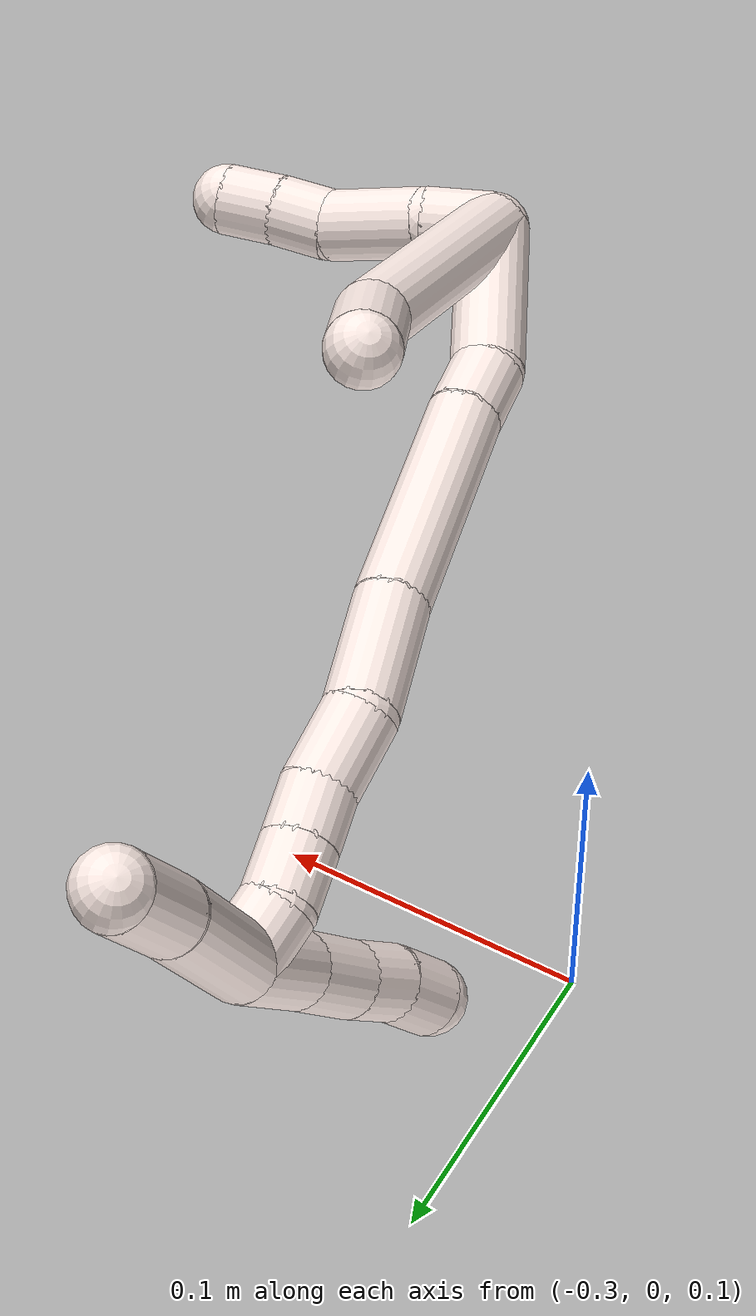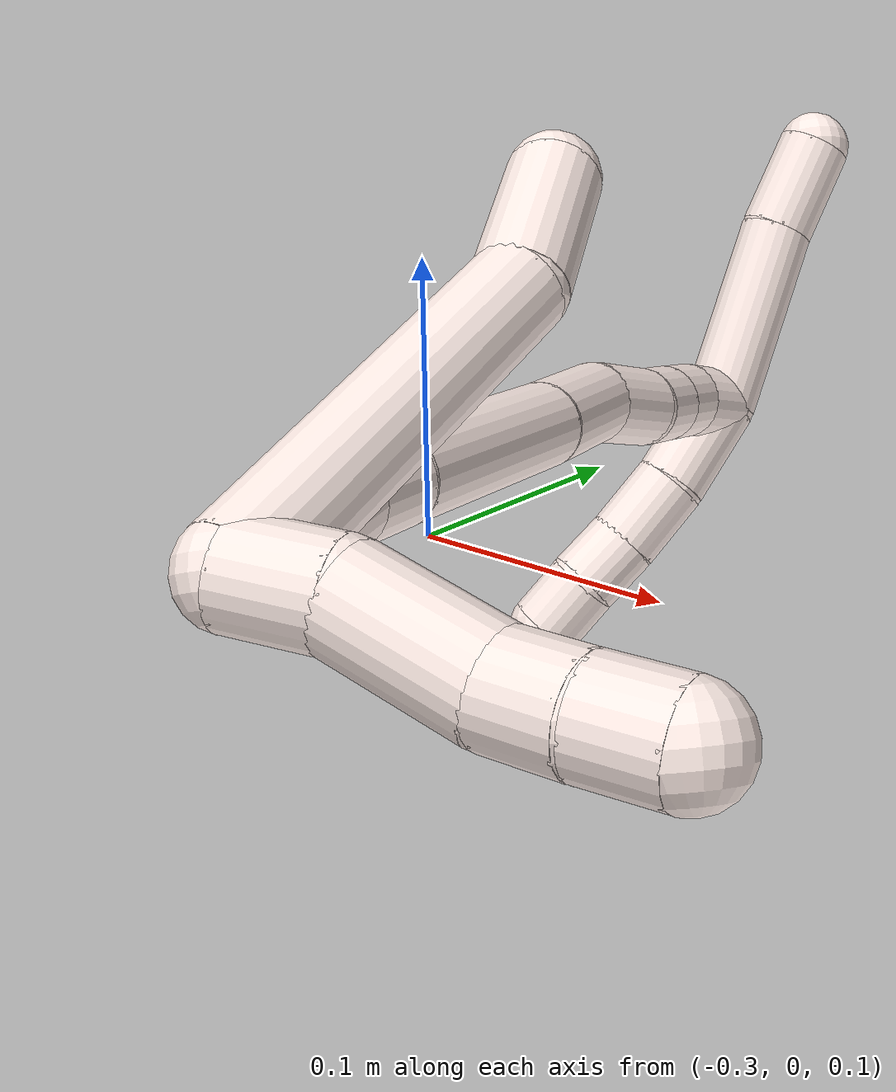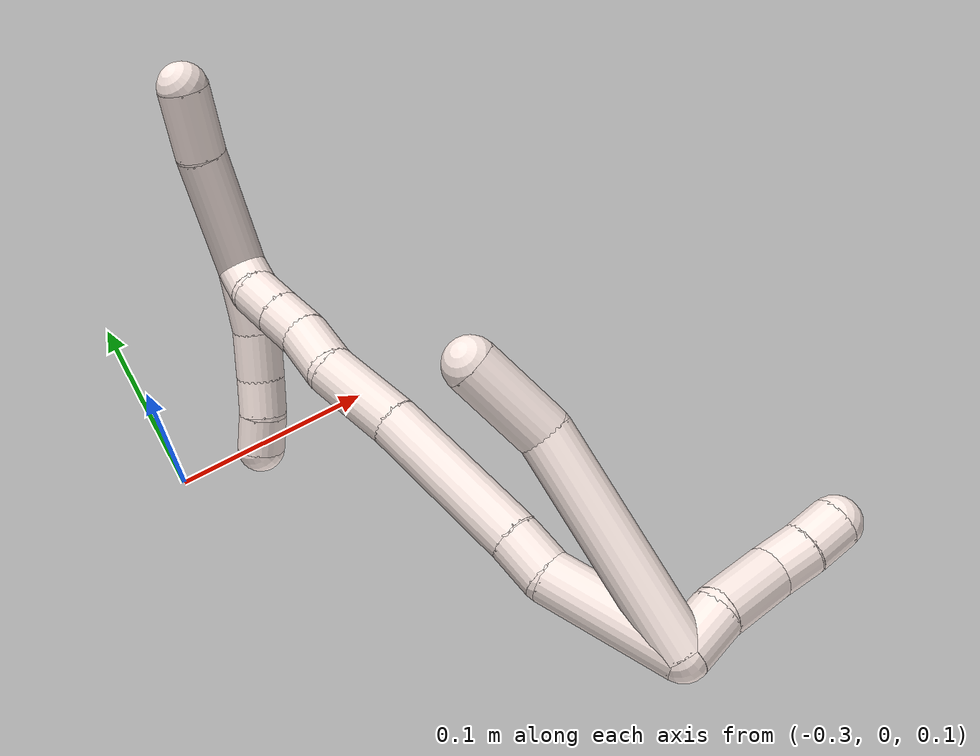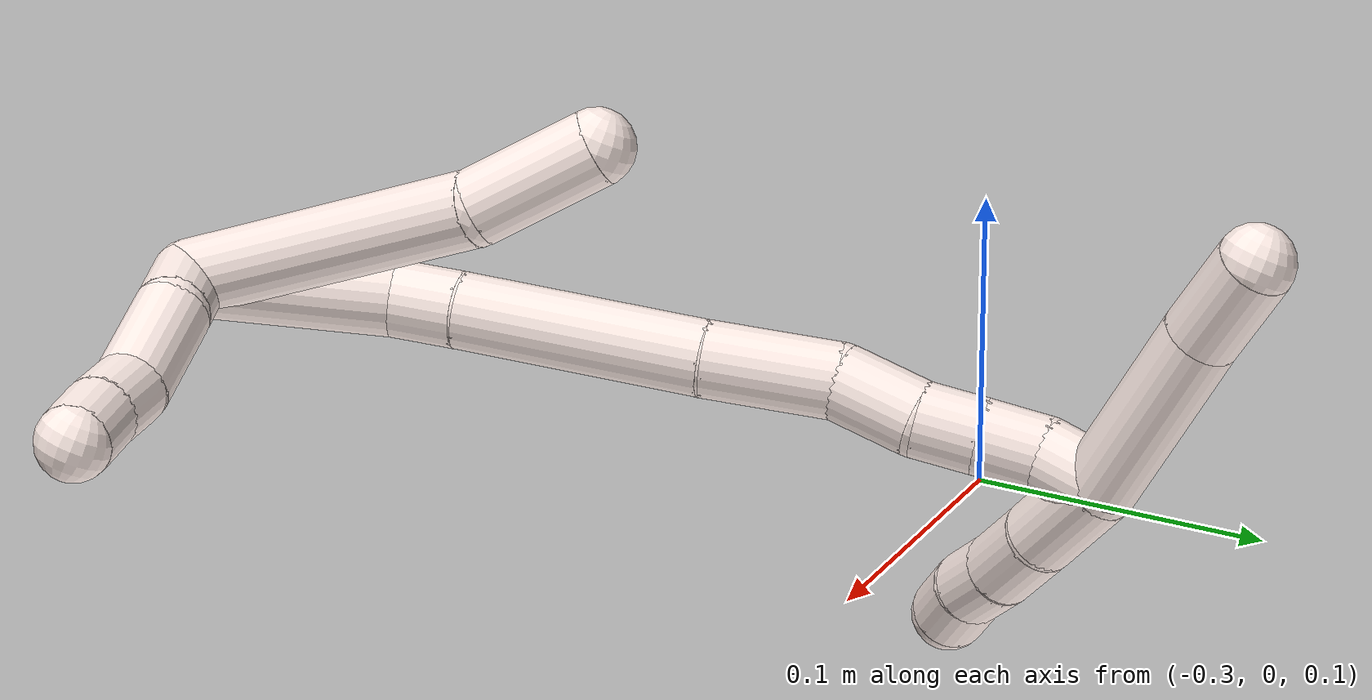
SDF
<sdf version="1.7">
 <world name="default">
  <model name="11">
   <static>0</static>
   <link name="11">
    <collision name="collision-cylinder-e_1_2_8">
     <pose>0.010398 0.041291 0.032533 -0.90347 0.195289 -0.094984</pose>
     <geometry><cylinder><radius>0.0125</radius><length>0.107172</length></cylinder></geometry>
     <surface>
      <friction><ode><mu>1.16</mu><mu2>1.16</mu2><slip1>0</slip1><slip2>0</slip2></ode></friction>
      <contact><ode><kp>1e+06</kp><kd>1</kd><max_vel>0</max_vel><min_depth>0.001</min_depth></ode></contact>
     </surface>
    </collision>
    <visual name="visual-cylinder-e_1_2_8">
     <pose>0.010398 0.041291 0.032533 -0.90347 0.195289 -0.094984</pose>
     <geometry><cylinder><radius>0.0125</radius><length>0.107172</length></cylinder></geometry>
     <material><ambient>1 0.933333 0.909804 1</ambient></material>
    </visual>
    <collision name="collision-cylinder-e_2_8_6">
     <pose>0.019136 0.096145 0.081554 -0.688406 -0.077639 0.027844</pose>
     <geometry><cylinder><radius>0.0125</radius><length>0.042828</length></cylinder></geometry>
     <surface>
      <friction><ode><mu>1.16</mu><mu2>1.16</mu2><slip1>0</slip1><slip2>0</slip2></ode></friction>
      <contact><ode><kp>1e+06</kp><kd>1</kd><max_vel>0</max_vel><min_depth>0.001</min_depth></ode></contact>
     </surface>
    </collision>
    <visual name="visual-cylinder-e_2_8_6">
     <pose>0.019136 0.096145 0.081554 -0.688406 -0.077639 0.027844</pose>
     <geometry><cylinder><radius>0.0125</radius><length>0.042828</length></cylinder></geometry>
     <material><ambient>1 0.933333 0.909804 1</ambient></material>
    </visual>
    <collision name="collision-cylinder-e_1_2_9">
     <pose>0.011056 0.002752 -0.003508 -2.47642 1.18746 -2.19558</pose>
     <geometry><cylinder><radius>0.0125</radius><length>0.023842</length></cylinder></geometry>
     <surface>
      <friction><ode><mu>1.16</mu><mu2>1.16</mu2><slip1>0</slip1><slip2>0</slip2></ode></friction>
      <contact><ode><kp>1e+06</kp><kd>1</kd><max_vel>0</max_vel><min_depth>0.001</min_depth></ode></contact>
     </surface>
    </collision>
    <visual name="visual-cylinder-e_1_2_9">
     <pose>0.011056 0.002752 -0.003508 -2.47642 1.18746 -2.19558</pose>
     <geometry><cylinder><radius>0.0125</radius><length>0.023842</length></cylinder></geometry>
     <material><ambient>1 0.933333 0.909804 1</ambient></material>
    </visual>
    <collision name="collision-cylinder-e_2_9_10">
     <pose>0.036899 0.008412 -0.016983 -2.85772 0.958643 -2.60498</pose>
     <geometry><cylinder><radius>0.0125</radius><length>0.036137</length></cylinder></geometry>
     <surface>
      <friction><ode><mu>1.16</mu><mu2>1.16</mu2><slip1>0</slip1><slip2>0</slip2></ode></friction>
      <contact><ode><kp>1e+06</kp><kd>1</kd><max_vel>0</max_vel><min_depth>0.001</min_depth></ode></contact>
     </surface>
    </collision>
    <visual name="visual-cylinder-e_2_9_10">
     <pose>0.036899 0.008412 -0.016983 -2.85772 0.958643 -2.60498</pose>
     <geometry><cylinder><radius>0.0125</radius><length>0.036137</length></cylinder></geometry>
     <material><ambient>1 0.933333 0.909804 1</ambient></material>
    </visual>
    <collision name="collision-cylinder-e_3_10_11">
     <pose>0.061162 0.011261 -0.030167 3.12332 1.24354 3.11609</pose>
     <geometry><cylinder><radius>0.0125</radius><length>0.020013</length></cylinder></geometry>
     <surface>
      <friction><ode><mu>1.16</mu><mu2>1.16</mu2><slip1>0</slip1><slip2>0</slip2></ode></friction>
      <contact><ode><kp>1e+06</kp><kd>1</kd><max_vel>0</max_vel><min_depth>0.001</min_depth></ode></contact>
     </surface>
    </collision>
    <visual name="visual-cylinder-e_3_10_11">
     <pose>0.061162 0.011261 -0.030167 3.12332 1.24354 3.11609</pose>
     <geometry><cylinder><radius>0.0125</radius><length>0.020013</length></cylinder></geometry>
     <material><ambient>1 0.933333 0.909804 1</ambient></material>
    </visual>
    <collision name="collision-cylinder-e_4_11_5">
     <pose>0.080108 0.012008 -0.036502 -2.88884 1.24297 -2.79043</pose>
     <geometry><cylinder><radius>0.0125</radius><length>0.020008</length></cylinder></geometry>
     <surface>
      <friction><ode><mu>1.16</mu><mu2>1.16</mu2><slip1>0</slip1><slip2>0</slip2></ode></friction>
      <contact><ode><kp>1e+06</kp><kd>1</kd><max_vel>0</max_vel><min_depth>0.001</min_depth></ode></contact>
     </surface>
    </collision>
    <visual name="visual-cylinder-e_4_11_5">
     <pose>0.080108 0.012008 -0.036502 -2.88884 1.24297 -2.79043</pose>
     <geometry><cylinder><radius>0.0125</radius><length>0.020008</length></cylinder></geometry>
     <material><ambient>1 0.933333 0.909804 1</ambient></material>
    </visual>
    <collision name="collision-cylinder-e_1_2_12">
     <pose>-0.009524 0.029775 0.009352 -1.26646 -0.296186 0.218157</pose>
     <geometry><cylinder><radius>0.0125</radius><length>0.06526</length></cylinder></geometry>
     <surface>
      <friction><ode><mu>1.16</mu><mu2>1.16</mu2><slip1>0</slip1><slip2>0</slip2></ode></friction>
      <contact><ode><kp>1e+06</kp><kd>1</kd><max_vel>0</max_vel><min_depth>0.001</min_depth></ode></contact>
     </surface>
    </collision>
    <visual name="visual-cylinder-e_1_2_12">
     <pose>-0.009524 0.029775 0.009352 -1.26646 -0.296186 0.218157</pose>
     <geometry><cylinder><radius>0.0125</radius><length>0.06526</length></cylinder></geometry>
     <material><ambient>1 0.933333 0.909804 1</ambient></material>
    </visual>
    <collision name="collision-cylinder-e_2_12_13">
     <pose>-0.018809 0.07028 0.021694 -1.29904 0.021453 -0.016293</pose>
     <geometry><cylinder><radius>0.0125</radius><length>0.022283</length></cylinder></geometry>
     <surface>
      <friction><ode><mu>1.16</mu><mu2>1.16</mu2><slip1>0</slip1><slip2>0</slip2></ode></friction>
      <contact><ode><kp>1e+06</kp><kd>1</kd><max_vel>0</max_vel><min_depth>0.001</min_depth></ode></contact>
     </surface>
    </collision>
    <visual name="visual-cylinder-e_2_12_13">
     <pose>-0.018809 0.07028 0.021694 -1.29904 0.021453 -0.016293</pose>
     <geometry><cylinder><radius>0.0125</radius><length>0.022283</length></cylinder></geometry>
     <material><ambient>1 0.933333 0.909804 1</ambient></material>
    </visual>
    <collision name="collision-cylinder-e_3_13_14">
     <pose>-0.020683 0.11989 0.034375 -1.32652 -0.052683 0.041167</pose>
     <geometry><cylinder><radius>0.0125</radius><length>0.080249</length></cylinder></geometry>
     <surface>
      <friction><ode><mu>1.16</mu><mu2>1.16</mu2><slip1>0</slip1><slip2>0</slip2></ode></friction>
      <contact><ode><kp>1e+06</kp><kd>1</kd><max_vel>0</max_vel><min_depth>0.001</min_depth></ode></contact>
     </surface>
    </collision>
    <visual name="visual-cylinder-e_3_13_14">
     <pose>-0.020683 0.11989 0.034375 -1.32652 -0.052683 0.041167</pose>
     <geometry><cylinder><radius>0.0125</radius><length>0.080249</length></cylinder></geometry>
     <material><ambient>1 0.933333 0.909804 1</ambient></material>
    </visual>
    <collision name="collision-cylinder-e_4_14_15">
     <pose>-0.025597 0.17953 0.049615 -1.30962 -0.129609 0.099574</pose>
     <geometry><cylinder><radius>0.0125</radius><length>0.043343</length></cylinder></geometry>
     <surface>
      <friction><ode><mu>1.16</mu><mu2>1.16</mu2><slip1>0</slip1><slip2>0</slip2></ode></friction>
      <contact><ode><kp>1e+06</kp><kd>1</kd><max_vel>0</max_vel><min_depth>0.001</min_depth></ode></contact>
     </surface>
    </collision>
    <visual name="visual-cylinder-e_4_14_15">
     <pose>-0.025597 0.17953 0.049615 -1.30962 -0.129609 0.099574</pose>
     <geometry><cylinder><radius>0.0125</radius><length>0.043343</length></cylinder></geometry>
     <material><ambient>1 0.933333 0.909804 1</ambient></material>
    </visual>
    <collision name="collision-cylinder-e_5_15_16">
     <pose>-0.027536 0.21416 0.055371 -1.55587 0.062036 -0.061117</pose>
     <geometry><cylinder><radius>0.0125</radius><length>0.027795</length></cylinder></geometry>
     <surface>
      <friction><ode><mu>1.16</mu><mu2>1.16</mu2><slip1>0</slip1><slip2>0</slip2></ode></friction>
      <contact><ode><kp>1e+06</kp><kd>1</kd><max_vel>0</max_vel><min_depth>0.001</min_depth></ode></contact>
     </surface>
    </collision>
    <visual name="visual-cylinder-e_5_15_16">
     <pose>-0.027536 0.21416 0.055371 -1.55587 0.062036 -0.061117</pose>
     <geometry><cylinder><radius>0.0125</radius><length>0.027795</length></cylinder></geometry>
     <material><ambient>1 0.933333 0.909804 1</ambient></material>
    </visual>
    <collision name="collision-cylinder-e_6_16_17">
     <pose>-0.027611 0.237939 0.057175 -1.41105 -0.093041 0.079266</pose>
     <geometry><cylinder><radius>0.0125</radius><length>0.020162</length></cylinder></geometry>
     <surface>
      <friction><ode><mu>1.16</mu><mu2>1.16</mu2><slip1>0</slip1><slip2>0</slip2></ode></friction>
      <contact><ode><kp>1e+06</kp><kd>1</kd><max_vel>0</max_vel><min_depth>0.001</min_depth></ode></contact>
     </surface>
    </collision>
    <visual name="visual-cylinder-e_6_16_17">
     <pose>-0.027611 0.237939 0.057175 -1.41105 -0.093041 0.079266</pose>
     <geometry><cylinder><radius>0.0125</radius><length>0.020162</length></cylinder></geometry>
     <material><ambient>1 0.933333 0.909804 1</ambient></material>
    </visual>
    <collision name="collision-cylinder-e_7_17_18">
     <pose>-0.02939 0.258033 0.06033 -1.41893 -0.081536 0.070017</pose>
     <geometry><cylinder><radius>0.0125</radius><length>0.020674</length></cylinder></geometry>
     <surface>
      <friction><ode><mu>1.16</mu><mu2>1.16</mu2><slip1>0</slip1><slip2>0</slip2></ode></friction>
      <contact><ode><kp>1e+06</kp><kd>1</kd><max_vel>0</max_vel><min_depth>0.001</min_depth></ode></contact>
     </surface>
    </collision>
    <visual name="visual-cylinder-e_7_17_18">
     <pose>-0.02939 0.258033 0.06033 -1.41893 -0.081536 0.070017</pose>
     <geometry><cylinder><radius>0.0125</radius><length>0.020674</length></cylinder></geometry>
     <material><ambient>1 0.933333 0.909804 1</ambient></material>
    </visual>
    <collision name="collision-cylinder-e_8_18_1">
     <pose>-0.028677 0.278213 0.061763 -1.58336 0.154223 -0.156165</pose>
     <geometry><cylinder><radius>0.0125</radius><length>0.020233</length></cylinder></geometry>
     <surface>
      <friction><ode><mu>1.16</mu><mu2>1.16</mu2><slip1>0</slip1><slip2>0</slip2></ode></friction>
      <contact><ode><kp>1e+06</kp><kd>1</kd><max_vel>0</max_vel><min_depth>0.001</min_depth></ode></contact>
     </surface>
    </collision>
    <visual name="visual-cylinder-e_8_18_1">
     <pose>-0.028677 0.278213 0.061763 -1.58336 0.154223 -0.156165</pose>
     <geometry><cylinder><radius>0.0125</radius><length>0.020233</length></cylinder></geometry>
     <material><ambient>1 0.933333 0.909804 1</ambient></material>
    </visual>
    <collision name="collision-cylinder-e_1_1_19">
     <pose>-0.0152 0.294446 0.091755 -0.204219 0.369845 -0.03833</pose>
     <geometry><cylinder><radius>0.0125</radius><length>0.065974</length></cylinder></geometry>
     <surface>
      <friction><ode><mu>1.16</mu><mu2>1.16</mu2><slip1>0</slip1><slip2>0</slip2></ode></friction>
      <contact><ode><kp>1e+06</kp><kd>1</kd><max_vel>0</max_vel><min_depth>0.001</min_depth></ode></contact>
     </surface>
    </collision>
    <visual name="visual-cylinder-e_1_1_19">
     <pose>-0.0152 0.294446 0.091755 -0.204219 0.369845 -0.03833</pose>
     <geometry><cylinder><radius>0.0125</radius><length>0.065974</length></cylinder></geometry>
     <material><ambient>1 0.933333 0.909804 1</ambient></material>
    </visual>
    <collision name="collision-cylinder-e_2_19_4">
     <pose>0.004284 0.304577 0.136608 -0.258288 0.460466 -0.06086</pose>
     <geometry><cylinder><radius>0.0125</radius><length>0.034026</length></cylinder></geometry>
     <surface>
      <friction><ode><mu>1.16</mu><mu2>1.16</mu2><slip1>0</slip1><slip2>0</slip2></ode></friction>
      <contact><ode><kp>1e+06</kp><kd>1</kd><max_vel>0</max_vel><min_depth>0.001</min_depth></ode></contact>
     </surface>
    </collision>
    <visual name="visual-cylinder-e_2_19_4">
     <pose>0.004284 0.304577 0.136608 -0.258288 0.460466 -0.06086</pose>
     <geometry><cylinder><radius>0.0125</radius><length>0.034026</length></cylinder></geometry>
     <material><ambient>1 0.933333 0.909804 1</ambient></material>
    </visual>
    <collision name="collision-cylinder-e_1_1_20">
     <pose>-0.035385 0.282002 0.048395 2.7033 -0.51423 -1.73601</pose>
     <geometry><cylinder><radius>0.0125</radius><length>0.033594</length></cylinder></geometry>
     <surface>
      <friction><ode><mu>1.16</mu><mu2>1.16</mu2><slip1>0</slip1><slip2>0</slip2></ode></friction>
      <contact><ode><kp>1e+06</kp><kd>1</kd><max_vel>0</max_vel><min_depth>0.001</min_depth></ode></contact>
     </surface>
    </collision>
    <visual name="visual-cylinder-e_1_1_20">
     <pose>-0.035385 0.282002 0.048395 2.7033 -0.51423 -1.73601</pose>
     <geometry><cylinder><radius>0.0125</radius><length>0.033594</length></cylinder></geometry>
     <material><ambient>1 0.933333 0.909804 1</ambient></material>
    </visual>
    <collision name="collision-cylinder-e_2_20_21">
     <pose>-0.051701 0.271201 0.025834 2.68348 -0.659412 -1.94543</pose>
     <geometry><cylinder><radius>0.0125</radius><length>0.02629</length></cylinder></geometry>
     <surface>
      <friction><ode><mu>1.16</mu><mu2>1.16</mu2><slip1>0</slip1><slip2>0</slip2></ode></friction>
      <contact><ode><kp>1e+06</kp><kd>1</kd><max_vel>0</max_vel><min_depth>0.001</min_depth></ode></contact>
     </surface>
    </collision>
    <visual name="visual-cylinder-e_2_20_21">
     <pose>-0.051701 0.271201 0.025834 2.68348 -0.659412 -1.94543</pose>
     <geometry><cylinder><radius>0.0125</radius><length>0.02629</length></cylinder></geometry>
     <material><ambient>1 0.933333 0.909804 1</ambient></material>
    </visual>
    <collision name="collision-cylinder-e_3_21_22">
     <pose>-0.066077 0.262476 0.009957 2.57968 -0.684321 -1.77966</pose>
     <geometry><cylinder><radius>0.0125</radius><length>0.020005</length></cylinder></geometry>
     <surface>
      <friction><ode><mu>1.16</mu><mu2>1.16</mu2><slip1>0</slip1><slip2>0</slip2></ode></friction>
      <contact><ode><kp>1e+06</kp><kd>1</kd><max_vel>0</max_vel><min_depth>0.001</min_depth></ode></contact>
     </surface>
    </collision>
    <visual name="visual-cylinder-e_3_21_22">
     <pose>-0.066077 0.262476 0.009957 2.57968 -0.684321 -1.77966</pose>
     <geometry><cylinder><radius>0.0125</radius><length>0.020005</length></cylinder></geometry>
     <material><ambient>1 0.933333 0.909804 1</ambient></material>
    </visual>
    <collision name="collision-cylinder-e_4_22_3">
     <pose>-0.079401 0.255926 -0.003401 2.79952 -0.770147 -2.33589</pose>
     <geometry><cylinder><radius>0.0125</radius><length>0.02011</length></cylinder></geometry>
     <surface>
      <friction><ode><mu>1.16</mu><mu2>1.16</mu2><slip1>0</slip1><slip2>0</slip2></ode></friction>
      <contact><ode><kp>1e+06</kp><kd>1</kd><max_vel>0</max_vel><min_depth>0.001</min_depth></ode></contact>
     </surface>
    </collision>
    <visual name="visual-cylinder-e_4_22_3">
     <pose>-0.079401 0.255926 -0.003401 2.79952 -0.770147 -2.33589</pose>
     <geometry><cylinder><radius>0.0125</radius><length>0.02011</length></cylinder></geometry>
     <material><ambient>1 0.933333 0.909804 1</ambient></material>
    </visual>
    <collision name="collision-sphere-3">
     <pose>-0.086402 0.253505 -0.0102 0 -0 0</pose>
     <geometry><sphere><radius>0.0125</radius></sphere></geometry>
     <surface>
      <friction><ode><mu>1.16</mu><mu2>1.16</mu2><slip1>0</slip1><slip2>0</slip2></ode></friction>
      <contact><ode><kp>1e+06</kp><kd>1</kd><max_vel>0</max_vel><min_depth>0.001</min_depth></ode></contact>
     </surface>
    </collision>
    <visual name="visual-sphere-3">
     <pose>-0.086402 0.253505 -0.0102 0 -0 0</pose>
     <geometry><sphere><radius>0.0125</radius></sphere></geometry>
     <material><ambient>1 0.933333 0.909804 1</ambient></material>
    </visual>
    <collision name="collision-sphere-22">
     <pose>-0.0724 0.258347 0.003399 0 -0 0</pose>
     <geometry><sphere><radius>0.0125</radius></sphere></geometry>
     <surface>
      <friction><ode><mu>1.16</mu><mu2>1.16</mu2><slip1>0</slip1><slip2>0</slip2></ode></friction>
      <contact><ode><kp>1e+06</kp><kd>1</kd><max_vel>0</max_vel><min_depth>0.001</min_depth></ode></contact>
     </surface>
    </collision>
    <visual name="visual-sphere-22">
     <pose>-0.0724 0.258347 0.003399 0 -0 0</pose>
     <geometry><sphere><radius>0.0125</radius></sphere></geometry>
     <material><ambient>1 0.933333 0.909804 1</ambient></material>
    </visual>
    <collision name="collision-sphere-21">
     <pose>-0.059754 0.266606 0.016516 0 -0 0</pose>
     <geometry><sphere><radius>0.0125</radius></sphere></geometry>
     <surface>
      <friction><ode><mu>1.16</mu><mu2>1.16</mu2><slip1>0</slip1><slip2>0</slip2></ode></friction>
      <contact><ode><kp>1e+06</kp><kd>1</kd><max_vel>0</max_vel><min_depth>0.001</min_depth></ode></contact>
     </surface>
    </collision>
    <visual name="visual-sphere-21">
     <pose>-0.059754 0.266606 0.016516 0 -0 0</pose>
     <geometry><sphere><radius>0.0125</radius></sphere></geometry>
     <material><ambient>1 0.933333 0.909804 1</ambient></material>
    </visual>
    <collision name="collision-sphere-20">
     <pose>-0.043647 0.275795 0.035152 0 -0 0</pose>
     <geometry><sphere><radius>0.0125</radius></sphere></geometry>
     <surface>
      <friction><ode><mu>1.16</mu><mu2>1.16</mu2><slip1>0</slip1><slip2>0</slip2></ode></friction>
      <contact><ode><kp>1e+06</kp><kd>1</kd><max_vel>0</max_vel><min_depth>0.001</min_depth></ode></contact>
     </surface>
    </collision>
    <visual name="visual-sphere-20">
     <pose>-0.043647 0.275795 0.035152 0 -0 0</pose>
     <geometry><sphere><radius>0.0125</radius></sphere></geometry>
     <material><ambient>1 0.933333 0.909804 1</ambient></material>
    </visual>
    <collision name="collision-sphere-4">
     <pose>0.011844 0.30847 0.151343 0 -0 0</pose>
     <geometry><sphere><radius>0.0125</radius></sphere></geometry>
     <surface>
      <friction><ode><mu>1.16</mu><mu2>1.16</mu2><slip1>0</slip1><slip2>0</slip2></ode></friction>
      <contact><ode><kp>1e+06</kp><kd>1</kd><max_vel>0</max_vel><min_depth>0.001</min_depth></ode></contact>
     </surface>
    </collision>
    <visual name="visual-sphere-4">
     <pose>0.011844 0.30847 0.151343 0 -0 0</pose>
     <geometry><sphere><radius>0.0125</radius></sphere></geometry>
     <material><ambient>1 0.933333 0.909804 1</ambient></material>
    </visual>
    <collision name="collision-sphere-11">
     <pose>0.070637 0.011202 -0.033383 0 -0 0</pose>
     <geometry><sphere><radius>0.0125</radius></sphere></geometry>
     <surface>
      <friction><ode><mu>1.16</mu><mu2>1.16</mu2><slip1>0</slip1><slip2>0</slip2></ode></friction>
      <contact><ode><kp>1e+06</kp><kd>1</kd><max_vel>0</max_vel><min_depth>0.001</min_depth></ode></contact>
     </surface>
    </collision>
    <visual name="visual-sphere-11">
     <pose>0.070637 0.011202 -0.033383 0 -0 0</pose>
     <geometry><sphere><radius>0.0125</radius></sphere></geometry>
     <material><ambient>1 0.933333 0.909804 1</ambient></material>
    </visual>
    <collision name="collision-sphere-10">
     <pose>0.051686 0.01132 -0.026951 0 -0 0</pose>
     <geometry><sphere><radius>0.0125</radius></sphere></geometry>
     <surface>
      <friction><ode><mu>1.16</mu><mu2>1.16</mu2><slip1>0</slip1><slip2>0</slip2></ode></friction>
      <contact><ode><kp>1e+06</kp><kd>1</kd><max_vel>0</max_vel><min_depth>0.001</min_depth></ode></contact>
     </surface>
    </collision>
    <visual name="visual-sphere-10">
     <pose>0.051686 0.01132 -0.026951 0 -0 0</pose>
     <geometry><sphere><radius>0.0125</radius></sphere></geometry>
     <material><ambient>1 0.933333 0.909804 1</ambient></material>
    </visual>
    <collision name="collision-sphere-6">
     <pose>0.017475 0.109708 0.098041 0 -0 0</pose>
     <geometry><sphere><radius>0.0125</radius></sphere></geometry>
     <surface>
      <friction><ode><mu>1.16</mu><mu2>1.16</mu2><slip1>0</slip1><slip2>0</slip2></ode></friction>
      <contact><ode><kp>1e+06</kp><kd>1</kd><max_vel>0</max_vel><min_depth>0.001</min_depth></ode></contact>
     </surface>
    </collision>
    <visual name="visual-sphere-6">
     <pose>0.017475 0.109708 0.098041 0 -0 0</pose>
     <geometry><sphere><radius>0.0125</radius></sphere></geometry>
     <material><ambient>1 0.933333 0.909804 1</ambient></material>
    </visual>
    <collision name="collision-sphere-9">
     <pose>0.022111 0.005504 -0.007016 0 -0 0</pose>
     <geometry><sphere><radius>0.0125</radius></sphere></geometry>
     <surface>
      <friction><ode><mu>1.16</mu><mu2>1.16</mu2><slip1>0</slip1><slip2>0</slip2></ode></friction>
      <contact><ode><kp>1e+06</kp><kd>1</kd><max_vel>0</max_vel><min_depth>0.001</min_depth></ode></contact>
     </surface>
    </collision>
    <visual name="visual-sphere-9">
     <pose>0.022111 0.005504 -0.007016 0 -0 0</pose>
     <geometry><sphere><radius>0.0125</radius></sphere></geometry>
     <material><ambient>1 0.933333 0.909804 1</ambient></material>
    </visual>
    <collision name="collision-sphere-2">
     <geometry><sphere><radius>0.0125</radius></sphere></geometry>
     <surface>
      <friction><ode><mu>1.16</mu><mu2>1.16</mu2><slip1>0</slip1><slip2>0</slip2></ode></friction>
      <contact><ode><kp>1e+06</kp><kd>1</kd><max_vel>0</max_vel><min_depth>0.001</min_depth></ode></contact>
     </surface>
    </collision>
    <visual name="visual-sphere-2">
     <geometry><sphere><radius>0.0125</radius></sphere></geometry>
     <material><ambient>1 0.933333 0.909804 1</ambient></material>
    </visual>
    <collision name="collision-sphere-19">
     <pose>-0.003276 0.300684 0.121872 0 -0 0</pose>
     <geometry><sphere><radius>0.0125</radius></sphere></geometry>
     <surface>
      <friction><ode><mu>1.16</mu><mu2>1.16</mu2><slip1>0</slip1><slip2>0</slip2></ode></friction>
      <contact><ode><kp>1e+06</kp><kd>1</kd><max_vel>0</max_vel><min_depth>0.001</min_depth></ode></contact>
     </surface>
    </collision>
    <visual name="visual-sphere-19">
     <pose>-0.003276 0.300684 0.121872 0 -0 0</pose>
     <geometry><sphere><radius>0.0125</radius></sphere></geometry>
     <material><ambient>1 0.933333 0.909804 1</ambient></material>
    </visual>
    <collision name="collision-sphere-8">
     <pose>0.020797 0.082581 0.065067 0 -0 0</pose>
     <geometry><sphere><radius>0.0125</radius></sphere></geometry>
     <surface>
      <friction><ode><mu>1.16</mu><mu2>1.16</mu2><slip1>0</slip1><slip2>0</slip2></ode></friction>
      <contact><ode><kp>1e+06</kp><kd>1</kd><max_vel>0</max_vel><min_depth>0.001</min_depth></ode></contact>
     </surface>
    </collision>
    <visual name="visual-sphere-8">
     <pose>0.020797 0.082581 0.065067 0 -0 0</pose>
     <geometry><sphere><radius>0.0125</radius></sphere></geometry>
     <material><ambient>1 0.933333 0.909804 1</ambient></material>
    </visual>
    <collision name="collision-sphere-5">
     <pose>0.08958 0.012813 -0.03962 0 -0 0</pose>
     <geometry><sphere><radius>0.0125</radius></sphere></geometry>
     <surface>
      <friction><ode><mu>1.16</mu><mu2>1.16</mu2><slip1>0</slip1><slip2>0</slip2></ode></friction>
      <contact><ode><kp>1e+06</kp><kd>1</kd><max_vel>0</max_vel><min_depth>0.001</min_depth></ode></contact>
     </surface>
    </collision>
    <visual name="visual-sphere-5">
     <pose>0.08958 0.012813 -0.03962 0 -0 0</pose>
     <geometry><sphere><radius>0.0125</radius></sphere></geometry>
     <material><ambient>1 0.933333 0.909804 1</ambient></material>
    </visual>
    <collision name="collision-sphere-12">
     <pose>-0.019048 0.05955 0.018704 0 -0 0</pose>
     <geometry><sphere><radius>0.0125</radius></sphere></geometry>
     <surface>
      <friction><ode><mu>1.16</mu><mu2>1.16</mu2><slip1>0</slip1><slip2>0</slip2></ode></friction>
      <contact><ode><kp>1e+06</kp><kd>1</kd><max_vel>0</max_vel><min_depth>0.001</min_depth></ode></contact>
     </surface>
    </collision>
    <visual name="visual-sphere-12">
     <pose>-0.019048 0.05955 0.018704 0 -0 0</pose>
     <geometry><sphere><radius>0.0125</radius></sphere></geometry>
     <material><ambient>1 0.933333 0.909804 1</ambient></material>
    </visual>
    <collision name="collision-sphere-13">
     <pose>-0.01857 0.08101 0.024684 0 -0 0</pose>
     <geometry><sphere><radius>0.0125</radius></sphere></geometry>
     <surface>
      <friction><ode><mu>1.16</mu><mu2>1.16</mu2><slip1>0</slip1><slip2>0</slip2></ode></friction>
      <contact><ode><kp>1e+06</kp><kd>1</kd><max_vel>0</max_vel><min_depth>0.001</min_depth></ode></contact>
     </surface>
    </collision>
    <visual name="visual-sphere-13">
     <pose>-0.01857 0.08101 0.024684 0 -0 0</pose>
     <geometry><sphere><radius>0.0125</radius></sphere></geometry>
     <material><ambient>1 0.933333 0.909804 1</ambient></material>
    </visual>
    <collision name="collision-sphere-14">
     <pose>-0.022796 0.158769 0.044066 0 -0 0</pose>
     <geometry><sphere><radius>0.0125</radius></sphere></geometry>
     <surface>
      <friction><ode><mu>1.16</mu><mu2>1.16</mu2><slip1>0</slip1><slip2>0</slip2></ode></friction>
      <contact><ode><kp>1e+06</kp><kd>1</kd><max_vel>0</max_vel><min_depth>0.001</min_depth></ode></contact>
     </surface>
    </collision>
    <visual name="visual-sphere-14">
     <pose>-0.022796 0.158769 0.044066 0 -0 0</pose>
     <geometry><sphere><radius>0.0125</radius></sphere></geometry>
     <material><ambient>1 0.933333 0.909804 1</ambient></material>
    </visual>
    <collision name="collision-sphere-15">
     <pose>-0.028398 0.200291 0.055164 0 -0 0</pose>
     <geometry><sphere><radius>0.0125</radius></sphere></geometry>
     <surface>
      <friction><ode><mu>1.16</mu><mu2>1.16</mu2><slip1>0</slip1><slip2>0</slip2></ode></friction>
      <contact><ode><kp>1e+06</kp><kd>1</kd><max_vel>0</max_vel><min_depth>0.001</min_depth></ode></contact>
     </surface>
    </collision>
    <visual name="visual-sphere-15">
     <pose>-0.028398 0.200291 0.055164 0 -0 0</pose>
     <geometry><sphere><radius>0.0125</radius></sphere></geometry>
     <material><ambient>1 0.933333 0.909804 1</ambient></material>
    </visual>
    <collision name="collision-sphere-16">
     <pose>-0.026674 0.228029 0.055578 0 -0 0</pose>
     <geometry><sphere><radius>0.0125</radius></sphere></geometry>
     <surface>
      <friction><ode><mu>1.16</mu><mu2>1.16</mu2><slip1>0</slip1><slip2>0</slip2></ode></friction>
      <contact><ode><kp>1e+06</kp><kd>1</kd><max_vel>0</max_vel><min_depth>0.001</min_depth></ode></contact>
     </surface>
    </collision>
    <visual name="visual-sphere-16">
     <pose>-0.026674 0.228029 0.055578 0 -0 0</pose>
     <geometry><sphere><radius>0.0125</radius></sphere></geometry>
     <material><ambient>1 0.933333 0.909804 1</ambient></material>
    </visual>
    <collision name="collision-sphere-17">
     <pose>-0.028548 0.247849 0.058771 0 -0 0</pose>
     <geometry><sphere><radius>0.0125</radius></sphere></geometry>
     <surface>
      <friction><ode><mu>1.16</mu><mu2>1.16</mu2><slip1>0</slip1><slip2>0</slip2></ode></friction>
      <contact><ode><kp>1e+06</kp><kd>1</kd><max_vel>0</max_vel><min_depth>0.001</min_depth></ode></contact>
     </surface>
    </collision>
    <visual name="visual-sphere-17">
     <pose>-0.028548 0.247849 0.058771 0 -0 0</pose>
     <geometry><sphere><radius>0.0125</radius></sphere></geometry>
     <material><ambient>1 0.933333 0.909804 1</ambient></material>
    </visual>
    <collision name="collision-sphere-18">
     <pose>-0.030231 0.268217 0.061888 0 -0 0</pose>
     <geometry><sphere><radius>0.0125</radius></sphere></geometry>
     <surface>
      <friction><ode><mu>1.16</mu><mu2>1.16</mu2><slip1>0</slip1><slip2>0</slip2></ode></friction>
      <contact><ode><kp>1e+06</kp><kd>1</kd><max_vel>0</max_vel><min_depth>0.001</min_depth></ode></contact>
     </surface>
    </collision>
    <visual name="visual-sphere-18">
     <pose>-0.030231 0.268217 0.061888 0 -0 0</pose>
     <geometry><sphere><radius>0.0125</radius></sphere></geometry>
     <material><ambient>1 0.933333 0.909804 1</ambient></material>
    </visual>
    <collision name="collision-sphere-1">
     <pose>-0.027123 0.288209 0.061637 0 -0 0</pose>
     <geometry><sphere><radius>0.0125</radius></sphere></geometry>
     <surface>
      <friction><ode><mu>1.16</mu><mu2>1.16</mu2><slip1>0</slip1><slip2>0</slip2></ode></friction>
      <contact><ode><kp>1e+06</kp><kd>1</kd><max_vel>0</max_vel><min_depth>0.001</min_depth></ode></contact>
     </surface>
    </collision>
    <visual name="visual-sphere-1">
     <pose>-0.027123 0.288209 0.061637 0 -0 0</pose>
     <geometry><sphere><radius>0.0125</radius></sphere></geometry>
     <material><ambient>1 0.933333 0.909804 1</ambient></material>
    </visual>
    <inertial>
     <pose>-0.008381 0.145059 0.039036 0 -0 0</pose>
     <mass>0.75</mass>
     <inertia>
      <ixx>0.000214</ixx>
      <ixy>0</ixy>
      <ixz>0</ixz>
      <iyy>0.000161</iyy>
      <iyz>0</iyz>
      <izz>-0.00019</izz>
     </inertia>
    </inertial>
   </link>
   <pose>-0.154476 -0.210948 0.1866 -0.33018 -0.29062 0.194098</pose>
  </model>
 </world>
</sdf>
